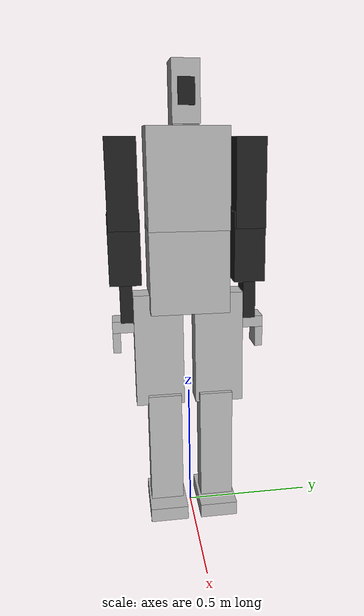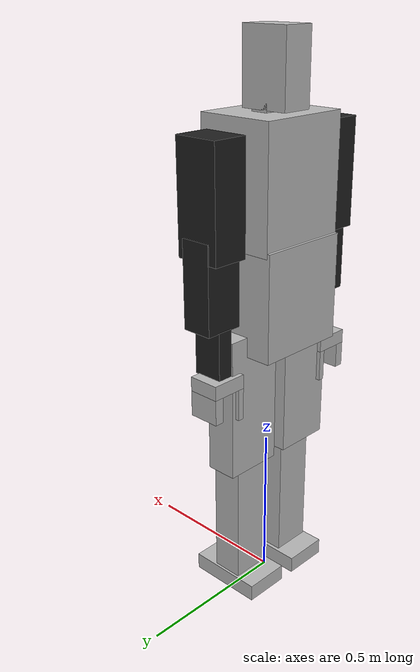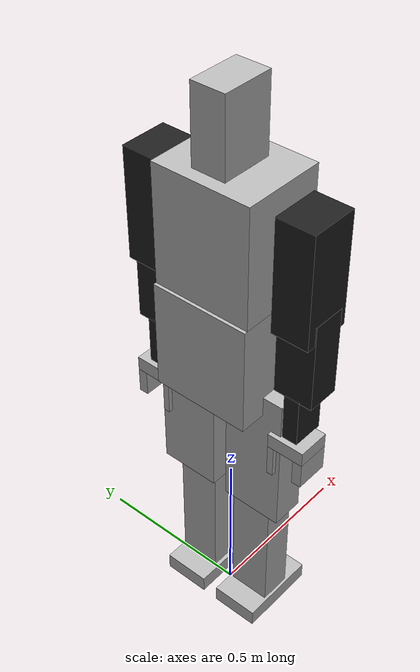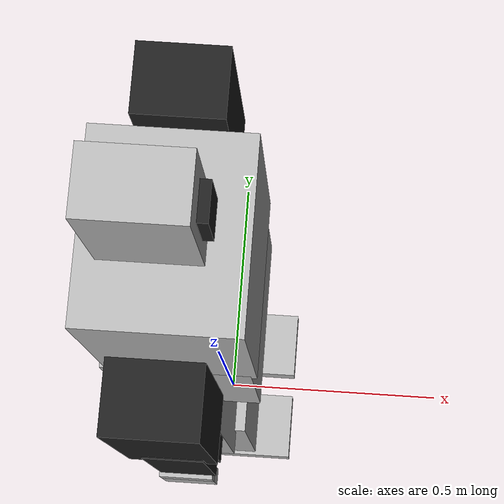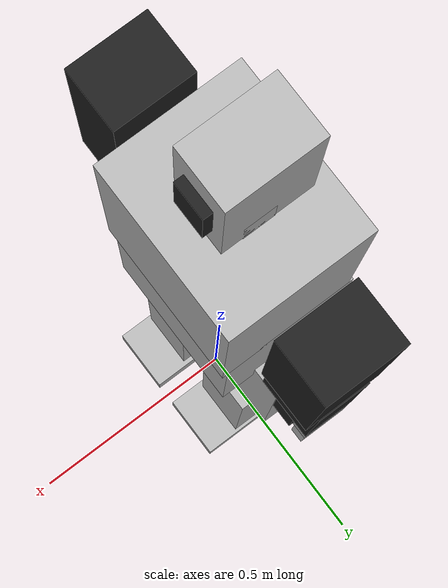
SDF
<?xml version="1.0" ?>
<sdf version="1.4">
<model name="thor">
  <static>false</static>

  <link name="torso">
    <pose>-0.0085 0 1.0180015 0 0 0</pose>
    <collision name="torso_collision">
      <geometry>
        <box>
          <size>0.25 0.3 0.3299971</size>
        </box>
      </geometry>
    </collision>
    <visual name="torso_visual">
      <pose>0 0 0 0 0 0</pose>
      <geometry>
        <box>
					<size>0.25 0.3 0.3299971</size>
				</box>
      </geometry>
    </visual>
    <inertial>
      <pose>-0.02034476 -0.000339931 0.014065804 0 0 0</pose>
      <mass>12.227102888619</mass>
      <inertia>
        <ixx>0.168786051</ixx>
        <iyy>0.151804339</iyy>
        <izz>0.183945912</izz>
        <iyz>0.000299081</iyz>
        <ixz>0.000191055</ixz>
        <ixy>0.000230307</ixy>
      </inertia>
    </inertial>
    <sensor name="imu_sensor" type="imu">
      <pose>0 0 0 0 0 1.5707963</pose>
      <always_on>1</always_on>
      <visualize>1</visualize>
      <topic>imu_sensor</topic>
    </sensor>
  </link>

  <link name="l_thigh">
    <pose>-0.002281 0.117675 0.6903315 0 0 0</pose>
    <collision name="l_thigh_collision">
      <geometry>
        <box>
          <size>0.1 0.18965 0.4496629</size>
        </box>
      </geometry>
    </collision>
    <visual name="l_thigh_visual">
      <pose>0 0 0 0 0 0</pose>
      <geometry>
        <box>
					<size>0.1 0.18965 0.4496629</size>
				</box>
      </geometry>
    </visual>
    <inertial>
      <pose>-0.01776384 0.009771943 -0.017537909 0 0 0</pose>
      <mass>5.13807864986</mass>
      <inertia>
        <ixx>0.050251535</ixx>
        <iyy>0.04823009</iyy>
        <izz>0.01825638</izz>
        <iyz>0.000428731</iyz>
        <ixz>-0.00485734</ixz>
        <ixy>-0.000369726</ixy>
      </inertia>
    </inertial>
  </link>

  <link name="r_thigh">
    <pose>-0.002281 -0.117675 0.6903315 0 0 0</pose>
    <collision name="r_thigh_collision">
      <geometry>
        <box>
          <size>0.1 0.18965 0.4496629</size>
        </box>
      </geometry>
    </collision>
    <visual name="r_thigh_visual">
      <pose>0 0 0 0 0 0</pose>
      <geometry>
        <box>
					<size>0.1 0.18965 0.4496629</size>
				</box>
      </geometry>
    </visual>
    <inertial>
      <pose>-0.017750387 -0.009800579 -0.017576732 0 0 0</pose>
      <mass>5.1402729320628</mass>
      <inertia>
        <ixx>0.050266937</ixx>
        <iyy>0.048269843</iyy>
        <izz>0.018232029</izz>
        <iyz>-0.000479151</iyz>
        <ixz>-0.004868597</ixz>
        <ixy>0.000400241</ixy>
      </inertia>
    </inertial>
  </link>

  <link name="l_shin">
    <pose>0.0190724 0.1021182 0.2811108 0 0 0</pose>
    <collision name="l_shin_collision">
      <geometry>
        <box>
          <size>0.1 0.13 0.4512008</size>
        </box>
      </geometry>
    </collision>
    <visual name="l_shin_visual">
      <pose>0 0 0 0 0 0</pose>
      <geometry>
        <box>
					<size>0.1 0.13 0.4512008</size>
				</box>
      </geometry>
    </visual>
    <inertial>
      <pose>0.016452175 -0.001617389 0.041544431 0 0 0</pose>
      <mass>4.2301928995278</mass>
      <inertia>
        <ixx>0.042672286</ixx>
        <iyy>0.043770804</iyy>
        <izz>0.012910027</izz>
        <iyz>-0.000372327</iyz>
        <ixz>0.005863435</ixz>
        <ixy>-4.6942e-05</ixy>
      </inertia>
    </inertial>
  </link>

  <link name="r_shin">
    <pose>0.0190724 -0.1021182 0.2811108 0 0 0</pose>
    <collision name="r_shin_collision">
      <geometry>
        <box>
          <size>0.1 0.13 0.4512008</size>
        </box>
      </geometry>
    </collision>
    <visual name="r_shin_visual">
      <pose>0 0 0 0 0 0</pose>
      <geometry>
        <box>
					<size>0.1 0.13 0.4512008</size>
				</box>
      </geometry>
    </visual>
    <inertial>
      <pose>0.016452169 0.001835239 0.041544431 0 0 0</pose>
      <mass>4.2301928995278</mass>
      <inertia>
        <ixx>0.042672987</ixx>
        <iyy>0.043770806</iyy>
        <izz>0.012910729</izz>
        <iyz>0.000406027</iyz>
        <ixz>0.005863442</ixz>
        <ixy>6.7751e-05</ixy>
      </inertia>
    </inertial>
  </link>

  <link name="l_foot">
    <pose>0.025 0.1 0.0266724 0 0 0</pose>
    <collision name="l_foot_collision">
      <geometry>
        <box>
          <size>0.25 0.1485 0.05493235</size>
        </box>
      </geometry>
      <!-- From atlas model -->
      <surface>
        <friction>
          <ode>
            <mu>0.9</mu>
            <mu2>0.9</mu2>
            <fdir1>1 0 0</fdir1>
          </ode>
        </friction>
        <contact>
          <ode>
            <max_vel>1.0</max_vel>
            <min_depth>0.003</min_depth>
          </ode>
        </contact>
      </surface>
    </collision>
    <visual name="l_foot_visual">
      <pose>0 0 0 0 0 0</pose>
      <geometry>
        <box>
					<size>0.25 0.1485 0.05493235</size>
				</box>
      </geometry>
    </visual>
    <inertial>
      <pose>-0.028042516 0.00096434599999999 0.005344341 0 0 0</pose>
      <mass>1.7169625926048</mass>
      <inertia>
        <ixx>0.00336244</ixx>
        <iyy>0.006955959</iyy>
        <izz>0.007417438</izz>
        <iyz>3.0838e-05</iyz>
        <ixz>-0.001236319</ixz>
        <ixy>5.764e-06</ixy>
      </inertia>
    </inertial>
    <sensor name="l_foot_contact_sensor" type="contact">
      <always_on>1</always_on>
      <contact>
        <collision>l_foot_collision</collision>
      </contact>
    </sensor>
  </link>

  <link name="r_foot">
    <pose>0.025 -0.10075 0.0266724 0 0 0</pose>
    <collision name="r_foot_collision">
      <geometry>
        <box>
          <size>0.25 0.1485 0.05493235</size>
        </box>
      </geometry>
      <!-- From atlas model -->
      <surface>
        <friction>
          <ode>
            <mu>0.9</mu>
            <mu2>0.9</mu2>
            <fdir1>1 0 0</fdir1>
          </ode>
        </friction>
        <contact>
          <ode>
            <max_vel>1.0</max_vel>
            <min_depth>0.003</min_depth>
          </ode>
        </contact>
      </surface>
    </collision>
    <visual name="r_foot_visual">
      <pose>0 0 0 0 0 0</pose>
      <geometry>
        <box>
					<size>0.25 0.1485 0.05493235</size>
				</box>
      </geometry>
    </visual>
    <inertial>
      <pose>-0.027942557 -0.00019983899999999 0.005337142 0 0 0</pose>
      <mass>1.7201733736363</mass>
      <inertia>
        <ixx>0.003363358</ixx>
        <iyy>0.006961913</iyy>
        <izz>0.007424205</izz>
        <iyz>-3.0884e-05</iyz>
        <ixz>-0.001236643</ixz>
        <ixy>-3.631e-06</ixy>
      </inertia>
    </inertial>
    <sensor name="r_foot_contact_sensor" type="contact">
      <always_on>1</always_on>
      <contact>
        <collision>r_foot_collision</collision>
      </contact>
    </sensor>
  </link>

  <link name="l_hip_yaw_trunnion">
    <pose>0 0.1 0.8925 0 0 0</pose>
    <!-- Axis = "z", -->
    <inertial>
      <mass>0.051573426573425</mass>
      <inertia>
        <ixx>0.0085833333333333</ixx>
        <iyy>0.0085833333333333</iyy>
        <izz>0.00075</izz>
        <ixy>0</ixy>
        <ixz>0</ixz>
        <iyz>0</iyz>
      </inertia>
    </inertial>
  </link>

  <link name="r_hip_yaw_trunnion">
    <pose>0 -0.1 0.8925 0 0 0</pose>
    <!-- Axis = "z", -->
    <inertial>
      <mass>0.051573426573425</mass>
      <inertia>
        <ixx>0.0085833333333333</ixx>
        <iyy>0.0085833333333333</iyy>
        <izz>0.00075</izz>
        <ixy>0</ixy>
        <ixz>0</ixz>
        <iyz>0</iyz>
      </inertia>
    </inertial>
  </link>

  <link name="l_hip_pitch_trunnion">
    <pose>0 0.1 0.8925 0 0 0</pose>
    <!-- Axis = "y", -->
    <inertial>
      <pose>0 0 0 1.5707963267949 0 0</pose>
      <mass>0.051573426573425</mass>
      <inertia>
        <ixx>0.0085833333333333</ixx>
        <iyy>0.0085833333333333</iyy>
        <izz>0.00075</izz>
        <ixy>0</ixy>
        <ixz>0</ixz>
        <iyz>0</iyz>
      </inertia>
    </inertial>
  </link>

  <link name="r_hip_pitch_trunnion">
    <pose>0 -0.1 0.8925 0 0 0</pose>
    <!-- Axis = "y", -->
    <inertial>
      <pose>0 0 0 1.5707963267949 0 0</pose>
      <mass>0.051573426573425</mass>
      <inertia>
        <ixx>0.0085833333333333</ixx>
        <iyy>0.0085833333333333</iyy>
        <izz>0.00075</izz>
        <ixy>0</ixy>
        <ixz>0</ixz>
        <iyz>0</iyz>
      </inertia>
    </inertial>
  </link>

  <link name="l_ankle_pitch_trunnion">
    <pose>0 0.1 0.0725 0 0 0</pose>
    <!-- Axis = "y", -->
    <inertial>
      <pose>0 0 0 1.5707963267949 0 0</pose>
      <mass>0.051573426573425</mass>
      <inertia>
        <ixx>0.0085833333333333</ixx>
        <iyy>0.0085833333333333</iyy>
        <izz>0.00075</izz>
        <ixy>0</ixy>
        <ixz>0</ixz>
        <iyz>0</iyz>
      </inertia>
    </inertial>
  </link>

  <link name="r_ankle_pitch_trunnion">
    <pose>0 -0.1 0.0725 0 0 0</pose>
    <!-- Axis = "y", -->
    <inertial>
      <pose>0 0 0 1.5707963267949 0 0</pose>
      <mass>0.051573426573425</mass>
      <inertia>
        <ixx>0.0085833333333333</ixx>
        <iyy>0.0085833333333333</iyy>
        <izz>0.00075</izz>
        <ixy>0</ixy>
        <ixz>0</ixz>
        <iyz>0</iyz>
      </inertia>
    </inertial>
  </link>

  <joint name="l_hip_yaw" type="revolute">
    <parent>
      torso
    </parent>
    <child>
      l_hip_yaw_trunnion
    </child>
    <axis>
      <xyz>0 0 1</xyz>
      <limit>
        <lower>-0.34906585039887</lower>
        <upper>0.78539816339745</upper>
        <effort>150</effort>
        <velocity>12</velocity>
      </limit>
      <dynamics>
        <damping>1.0</damping>
        <friction>0</friction>
      </dynamics>
    </axis>
    <physics>
      <ode>
        <cfm_damping>1</cfm_damping>
      </ode>
    </physics>
  </joint>

  <joint name="r_hip_yaw" type="revolute">
    <parent>
      torso
    </parent>
    <child>
      r_hip_yaw_trunnion
    </child>
    <axis>
      <xyz>0 0 1</xyz>
      <limit>
        <lower>-0.78539816339745</lower>
        <upper>0.34906585039887</upper>
        <effort>150</effort>
        <velocity>12</velocity>
      </limit>
      <dynamics>
        <damping>1.0</damping>
        <friction>0</friction>
      </dynamics>
    </axis>
    <physics>
      <ode>
        <cfm_damping>1</cfm_damping>
      </ode>
    </physics>
  </joint>

  <joint name="l_hip_roll" type="revolute">
    <parent>
      l_hip_yaw_trunnion
    </parent>
    <child>
      l_hip_pitch_trunnion
    </child>
    <axis>
      <xyz>1 0 0</xyz>
      <limit>
        <lower>-0.5235987755983</lower>
        <upper>0.78539816339745</upper>
        <effort>150</effort>
        <velocity>12</velocity>
      </limit>
      <dynamics>
        <damping>1.0</damping>
        <friction>0</friction>
      </dynamics>
    </axis>
    <physics>
      <ode>
        <cfm_damping>1</cfm_damping>
      </ode>
    </physics>
  </joint>

  <joint name="r_hip_roll" type="revolute">
    <parent>
      r_hip_yaw_trunnion
    </parent>
    <child>
      r_hip_pitch_trunnion
    </child>
    <axis>
      <xyz>1 0 0</xyz>
      <limit>
        <lower>-0.78539816339745</lower>
        <upper>0.5235987755983</upper>
        <effort>150</effort>
        <velocity>12</velocity>
      </limit>
      <dynamics>
        <damping>1.0</damping>
        <friction>0</friction>
      </dynamics>
    </axis>
    <physics>
      <ode>
        <cfm_damping>1</cfm_damping>
      </ode>
    </physics>
  </joint>

  <joint name="l_hip_pitch" type="revolute">
    <pose>0.002281 -0.017675 0.2021685 0 0 0</pose>
    <parent>
      l_hip_pitch_trunnion
    </parent>
    <child>
      l_thigh
    </child>
    <axis>
      <xyz>0 1 0</xyz>
      <limit>
        <lower>-2.0943951023932</lower>
        <upper>0.5235987755983</upper>
        <effort>150</effort>
        <velocity>12</velocity>
      </limit>
      <dynamics>
        <damping>1.0</damping>
        <friction>0</friction>
      </dynamics>
    </axis>
    <physics>
      <ode>
        <cfm_damping>1</cfm_damping>
      </ode>
    </physics>
  </joint>

  <joint name="r_hip_pitch" type="revolute">
    <pose>0.002281 0.017675 0.2021685 0 0 0</pose>
    <parent>
      r_hip_pitch_trunnion
    </parent>
    <child>
      r_thigh
    </child>
    <axis>
      <xyz>0 1 0</xyz>
      <limit>
        <lower>-2.0943951023932</lower>
        <upper>0.5235987755983</upper>
        <effort>150</effort>
        <velocity>12</velocity>
      </limit>
      <dynamics>
        <damping>1.0</damping>
        <friction>0</friction>
      </dynamics>
    </axis>
    <physics>
      <ode>
        <cfm_damping>1</cfm_damping>
      </ode>
    </physics>
  </joint>

  <joint name="l_knee_pitch" type="revolute">
    <pose>-0.0190724 -0.0021182 0.2013892 0 0 0</pose>
    <parent>
      l_thigh
    </parent>
    <child>
      l_shin
    </child>
    <axis>
      <xyz>0 1 0</xyz>
      <limit>
        <lower>0</lower>
        <upper>2.3561944901923</upper>
        <effort>150</effort>
        <velocity>12</velocity>
      </limit>
      <dynamics>
        <damping>1.0</damping>
        <friction>0</friction>
      </dynamics>
    </axis>
    <physics>
      <ode>
        <cfm_damping>1</cfm_damping>
      </ode>
    </physics>
  </joint>

  <joint name="r_knee_pitch" type="revolute">
    <pose>-0.0190724 0.0021182 0.2013892 0 0 0</pose>
    <parent>
      r_thigh
    </parent>
    <child>
      r_shin
    </child>
    <axis>
      <xyz>0 1 0</xyz>
      <limit>
        <lower>0</lower>
        <upper>2.3561944901923</upper>
        <effort>150</effort>
        <velocity>12</velocity>
      </limit>
      <dynamics>
        <damping>1.0</damping>
        <friction>0</friction>
      </dynamics>
    </axis>
    <physics>
      <ode>
        <cfm_damping>1</cfm_damping>
      </ode>
    </physics>
  </joint>

  <joint name="l_ankle_pitch" type="revolute">
    <parent>
      l_shin
    </parent>
    <child>
      l_ankle_pitch_trunnion
    </child>
    <axis>
      <xyz>0 1 0</xyz>
      <limit>
        <lower>-0.95993108859688</lower>
        <upper>0.61086523819802</upper>
        <effort>150</effort>
        <velocity>12</velocity>
      </limit>
      <dynamics>
        <damping>1.0</damping>
        <friction>0</friction>
      </dynamics>
    </axis>
    <physics>
      <ode>
        <cfm_damping>1</cfm_damping>
      </ode>
    </physics>
  </joint>

  <joint name="r_ankle_pitch" type="revolute">
    <parent>
      r_shin
    </parent>
    <child>
      r_ankle_pitch_trunnion
    </child>
    <axis>
      <xyz>0 1 0</xyz>
      <limit>
        <lower>-0.95993108859688</lower>
        <upper>0.61086523819802</upper>
        <effort>150</effort>
        <velocity>12</velocity>
      </limit>
      <dynamics>
        <damping>1.0</damping>
        <friction>0</friction>
      </dynamics>
    </axis>
    <physics>
      <ode>
        <cfm_damping>1</cfm_damping>
      </ode>
    </physics>
  </joint>

  <joint name="l_ankle_roll" type="revolute">
    <pose>-0.025 0 0.0458276 0 0 0</pose>
    <parent>
      l_ankle_pitch_trunnion
    </parent>
    <child>
      l_foot
    </child>
    <axis>
      <xyz>1 0 0</xyz>
      <limit>
        <lower>-0.5235987755983</lower>
        <upper>0.5235987755983</upper>
        <effort>150</effort>
        <velocity>12</velocity>
      </limit>
      <dynamics>
        <damping>1.0</damping>
        <friction>0</friction>
      </dynamics>
    </axis>
    <physics>
      <provide_feedback>1</provide_feedback>
      <ode>
        <cfm_damping>1</cfm_damping>
      </ode>
    </physics>
  </joint>

  <joint name="r_ankle_roll" type="revolute">
    <pose>-0.025 0.00075 0.0458276 0 0 0</pose>
    <parent>
      r_ankle_pitch_trunnion
    </parent>
    <child>
      r_foot
    </child>
    <axis>
      <xyz>1 0 0</xyz>
      <limit>
        <lower>-0.5235987755983</lower>
        <upper>0.5235987755983</upper>
        <effort>150</effort>
        <velocity>12</velocity>
      </limit>
      <dynamics>
        <damping>1.0</damping>
        <friction>0</friction>
      </dynamics>
    </axis>
    <physics>
      <provide_feedback>1</provide_feedback>
      <ode>
        <cfm_damping>1</cfm_damping>
      </ode>
    </physics>
  </joint>

  <joint name="waist_yaw" type="revolute">
    <parent>
      torso
    </parent>
    <child>
      waist_pitch_trunnion
    </child>
    <axis>
      <xyz>0 0 1</xyz>
      <limit>
        <lower>-0.78539816339745</lower>
        <upper>0.78539816339745</upper>
        <effort>150</effort>
        <velocity>12</velocity>
      </limit>
      <dynamics>
        <damping>1.0</damping>
        <friction>0</friction>
      </dynamics>
    </axis>
    <physics>
      <ode>
        <cfm_damping>1</cfm_damping>
      </ode>
    </physics>
  </joint>

  <link name="waist_pitch_trunnion">
    <pose>0 0 1.2575 0 0 0</pose>
    <!-- Axis = "y", -->
    <inertial>
      <pose>0 0 0 1.5707963267949 0 0</pose>
      <mass>0.051573426573425</mass>
      <inertia>
        <ixx>0.0085833333333333</ixx>
        <iyy>0.0085833333333333</iyy>
        <izz>0.00075</izz>
        <ixy>0</ixy>
        <ixz>0</ixz>
        <iyz>0</iyz>
      </inertia>
    </inertial>
  </link>

  <joint name="waist_pitch" type="revolute">
    <pose>-0.001 0 -0.09375 0 0 0</pose>
    <parent>
      waist_pitch_trunnion
    </parent>
    <child>
      chest
    </child>
    <axis>
      <xyz>0 1 0</xyz>
      <limit>
        <lower>-0.34906585039887</lower>
        <upper>0.34906585039887</upper>
        <effort>150</effort>
        <velocity>12</velocity>
      </limit>
      <dynamics>
        <damping>1.0</damping>
        <friction>0</friction>
      </dynamics>
    </axis>
    <physics>
      <ode>
        <cfm_damping>1</cfm_damping>
      </ode>
    </physics>
  </joint>

  <link name="chest">
    <pose>0.001 0 1.35125 0 0 0</pose>
    <collision name="chest_collision">
      <geometry>
        <box>
          <size>0.25 0.3 0.3685</size>
        </box>
      </geometry>
    </collision>
    <visual name="chest_visual">
      <pose>0 0 0 0 0 0</pose>
      <geometry>
        <box>
					<size>0.25 0.3 0.3685</size>
				</box>
      </geometry>
    </visual>
    <inertial>
      <pose>-0.010475235 0.003477582 0.016042633 0 0 0</pose>
      <mass>8.9112224908039</mass>
      <inertia>
        <ixx>0.212139518</ixx>
        <iyy>0.177608078</iyy>
        <izz>0.082558505</izz>
        <iyz>0.000482353</iyz>
        <ixz>-0.001780773</ixz>
        <ixy>0.000361146</ixy>
      </inertia>
    </inertial>
  </link>

  <joint name="head_yaw" type="revolute">
    <pose>0 -0.003 -0.024025 0 0 0</pose>
    <parent>
      chest
    </parent>
    <child>
      neck
    </child>
    <axis>
      <xyz>0 0 1</xyz>
      <limit>
        <lower>-1.5707963267949</lower>
        <upper>1.5707963267949</upper>
        <effort>150</effort>
        <velocity>12</velocity>
      </limit>
      <dynamics>
        <damping>1.0</damping>
        <friction>0</friction>
      </dynamics>
    </axis>
    <physics>
      <ode>
        <cfm_damping>1</cfm_damping>
      </ode>
    </physics>
  </joint>

  <link name="neck">
    <pose>0 0.003 1.559525 0 0 0</pose>
    <collision name="neck_collision">
      <geometry>
        <box>
          <size>0.0541 0.096 0.05405</size>
        </box>
      </geometry>
    </collision>
    <visual name="neck_visual">
      <pose>0 0 0 0 0 0</pose>
      <geometry>
        <box>
					<size>0.0541 0.096 0.05405</size>
				</box>
      </geometry>
    </visual>
    <inertial>
      <pose>1.2e-08 -0.002875317 0.00050305599999989 0 0 0</pose>
      <mass>0.42837005699299</mass>
      <inertia>
        <ixx>0.000336505</ixx>
        <iyy>0.000143407</iyy>
        <izz>0.000323735</izz>
        <iyz>-8.463e-06</iyz>
        <ixz>0</ixz>
        <ixy>-0</ixy>
      </inertia>
    </inertial>
  </link>

  <joint name="head_pitch" type="revolute">
    <pose>0.0142568 0 -0.08855 0 0 0</pose>
    <parent>
      neck
    </parent>
    <child>
      head
    </child>
    <axis>
      <xyz>0 1 0</xyz>
      <limit>
        <lower>-0.5235987755983</lower>
        <upper>1.0471975511966</upper>
        <effort>150</effort>
        <velocity>12</velocity>
      </limit>
      <dynamics>
        <damping>1.0</damping>
        <friction>0</friction>
      </dynamics>
    </axis>
    <physics>
      <ode>
        <cfm_damping>1</cfm_damping>
      </ode>
    </physics>
  </joint>

  <link name="head">
    <pose>-0.0142568 0 1.65105 0 0 0</pose>
    <collision name="head_collision">
      <geometry>
        <box>
          <size>0.155386 0.102 0.2191</size>
        </box>
      </geometry>
    </collision>
    <visual name="head_visual">
      <pose>0 0 0 0 0 0</pose>
      <geometry>
        <box>
					<size>0.155386 0.102 0.2191</size>
				</box>
      </geometry>
    </visual>
    <inertial>
      <pose>-0.004959974 4.1336e-05 0.056361706 0 0 0</pose>
      <mass>2.2650798087587</mass>
      <inertia>
        <ixx>0.013808097</ixx>
        <iyy>0.011370053</iyy>
        <izz>0.007199137</izz>
        <iyz>-9.74e-06</iyz>
        <ixz>0.002271466</ixz>
        <ixy>1.389e-06</ixy>
      </inertia>
    </inertial>
</link>

  <!-- MultiSense S7 -->
  <joint name="left_camera_frame_joint" type="revolute">
    <pose>0.0142568 0 -0.08855 0 0 0</pose>
    <parent>neck</parent>
    <child>left_camera_frame</child>
    <axis>
      <xyz>0 1 0</xyz>
      <limit>
  <lower>0.0</lower>
  <upper>0.0</upper>
      </limit>
    </axis>
  </joint>

  <!-- link for left frame -->
  <link name="left_camera_frame">
  <!-- Fix left frame pose-->
    <pose>0.045 0.035 1.74875 0 0 0</pose>
    <sensor type="multicamera" name="camera_multisense">
      <update_rate>30.0</update_rate>
      <camera name="left">
        <pose>0 0 0 0 0 0</pose>
        <horizontal_fov>1.3962634</horizontal_fov>
        <image>
          <width>800</width>
          <height>800</height>
          <format>R8G8B8</format>
        </image>
        <clip>
          <near>0.02</near>
          <far>300</far>
        </clip>
        <noise>
          <type>gaussian</type>
          <mean>0.0</mean>
          <stddev>0.007</stddev>
        </noise>
      </camera>
      <camera name="right">
        <pose>0 -0.07 0 0 0 0</pose>
        <horizontal_fov>1.3962634</horizontal_fov>
        <image>
          <width>800</width>
          <height>800</height>
          <format>R8G8B8</format>
        </image>
        <clip>
          <near>0.02</near>
          <far>300</far>
        </clip>
        <noise>
          <type>gaussian</type>
          <mean>0.0</mean>
          <stddev>0.007</stddev>
        </noise>
      </camera>
      <plugin name="stereo_camera_controller" filename="libgazebo_ros_multicamera.so">
        <alwaysOn>true</alwaysOn>
        <updateRate>0.0</updateRate>
        <cameraName>multisense</cameraName>
        <imageTopicName>image_color</imageTopicName>
        <cameraInfoTopicName>camera_info</cameraInfoTopicName>
        <frameName>/multisense/left_camera_optical_frame</frameName>
        <hackBaseline>0.07</hackBaseline>
        <distortionK1>0.0</distortionK1>
        <distortionK2>0.0</distortionK2>
        <distortionK3>0.0</distortionK3>
        <distortionT1>0.0</distortionT1>
        <distortionT2>0.0</distortionT2>
      </plugin>
    </sensor>
  </link>

  <joint name="head_lidar_roll" type="revolute">
    <pose>-0.0098 0 0 0 0 0</pose>
    <parent>
      head
    </parent>
    <child>
      head_lidar
    </child>
    <axis>
      <xyz>1 0 0</xyz>
      <limit>
        <effort>150</effort>
        <velocity>12</velocity>
      </limit>
      <dynamics>
        <damping>1.0</damping>
        <friction>0</friction>
      </dynamics>
    </axis>
    <physics>
      <ode>
        <cfm_damping>1</cfm_damping>
      </ode>
    </physics>
  </joint>

  <link name="head_lidar">
    <pose>0.0098 0 1.6515 0 0 0</pose>
    <collision name="head_lidar_collision">
      <geometry>
        <box>
          <size>0.1395 0.06 0.093</size>
        </box>
      </geometry>
    </collision>
    <visual name="head_lidar_visual">
      <pose>0 0 0 0 0 0</pose>
      <geometry>
        <box>
					<size>0.1395 0.06 0.093</size>
				</box>
      </geometry>
      <material>
        <script>
          <uri>file://media/materials/scripts/gazebo.material</uri>
          <name>Gazebo/FlatBlack</name>
        </script>
      </material>
    </visual>
    <inertial>
      <pose>0.015857021 -2.21e-06 -0.0076187240000001 0 0 0</pose>
      <mass>0.44774993965034</mass>
      <inertia>
        <ixx>0.000368817</ixx>
        <iyy>0.00087532</iyy>
        <izz>0.000707833</izz>
        <iyz>-2.1e-08</iyz>
        <ixz>-7.653e-06</ixz>
        <ixy>5.5e-08</ixy>
      </inertia>
    </inertial>
    <sensor name="lidar.head_hokuyo" type="ray">
      <!-- Hokuyo UTM-30LX-EW -->
      <always_on>1</always_on>
      <update_rate>40</update_rate>
      <pose>0.0397 0 0.02 0 0 0</pose>
      <ray>
        <scan>
          <horizontal>
            <samples>1081</samples>
            <resolution>1</resolution>
            <min_angle>-2.35619449</min_angle>
            <max_angle>2.35619449</max_angle>
          </horizontal>
        </scan>
        <range>
          <min>.1</min>
          <max>70</max>
          <resolution>.05</resolution>
        </range>
        <noise>
          <type>gaussian</type>
          <mean>0.0</mean>
          <stddev>0.01</stddev>
        </noise>
      </ray>
      <plugin name="gazebo_ros_head_hokuyo" filename="libgazebo_ros_laser.so">
        <topicName>/laser/scan/</topicName>
        <frameName>head_lidar_emitter</frameName>
      </plugin>
    </sensor>
  </link>

  <joint name="l_shoulder_pitch" type="revolute">
    <parent>
      chest
    </parent>
    <child>
      l_shoulder_pitch_trunnion
    </child>
    <axis>
      <xyz>0 1 0</xyz>
      <limit>
        <lower>-0.7418</lower>
        <upper>1.5707963267949</upper>
        <effort>150</effort>
        <velocity>12</velocity>
      </limit>
      <dynamics>
        <damping>1.0</damping>
        <friction>0</friction>
      </dynamics>
    </axis>
    <physics>
      <ode>
        <cfm_damping>1</cfm_damping>
      </ode>
    </physics>
  </joint>

  <joint name="r_shoulder_pitch" type="revolute">
    <parent>
      chest
    </parent>
    <child>
      r_shoulder_pitch_trunnion
    </child>
    <axis>
      <xyz>0 1 0</xyz>
      <limit>
        <lower>-0.7418</lower>
        <upper>1.5707963267949</upper>
        <effort>150</effort>
        <velocity>12</velocity>
      </limit>
      <dynamics>
        <damping>1.0</damping>
        <friction>0</friction>
      </dynamics>
    </axis>
    <physics>
      <ode>
        <cfm_damping>1</cfm_damping>
      </ode>
    </physics>
  </joint>

  <link name="l_shoulder_pitch_trunnion">
    <pose>0 0.2375 1.4715 0 0 0</pose>
    <!-- Axis = "y", -->
    <inertial>
      <pose>0 0 0 1.5707963267949 0 0</pose>
      <mass>0.051573426573425</mass>
      <inertia>
        <ixx>0.0085833333333333</ixx>
        <iyy>0.0085833333333333</iyy>
        <izz>0.00075</izz>
        <ixy>0</ixy>
        <ixz>0</ixz>
        <iyz>0</iyz>
      </inertia>
    </inertial>
  </link>

  <link name="r_shoulder_pitch_trunnion">
    <pose>0 -0.2375 1.4715 0 0 0</pose>
    <!-- Axis = "y", -->
    <collision name="r_shoulder_pitch_trunnion_collision">
      <pose>0 0 0 1.5707963267949 0 0</pose>
      <geometry>
        <cylinder>
          <radius>0.01</radius>
          <length>0.1</length>
        </cylinder>
      </geometry>
    </collision>
    <inertial>
      <pose>0 0 0 1.5707963267949 0 0</pose>
      <mass>0.051573426573425</mass>
      <inertia>
        <ixx>0.0085833333333333</ixx>
        <iyy>0.0085833333333333</iyy>
        <izz>0.00075</izz>
        <ixy>0</ixy>
        <ixz>0</ixz>
        <iyz>0</iyz>
      </inertia>
    </inertial>
  </link>

  <joint name="l_shoulder_roll" type="revolute">
    <parent>
      l_shoulder_pitch_trunnion
    </parent>
    <child>
      l_shoulder_yaw_trunnion
    </child>
    <axis>
      <xyz>1 0 0</xyz>
      <limit>
        <lower>0</lower>
        <upper>3.1415926535898</upper>
        <effort>150</effort>
        <velocity>12</velocity>
      </limit>
      <dynamics>
        <damping>1.0</damping>
        <friction>0</friction>
      </dynamics>
    </axis>
    <physics>
      <ode>
        <cfm_damping>1</cfm_damping>
      </ode>
    </physics>
  </joint>

  <joint name="r_shoulder_roll" type="revolute">
    <parent>
      r_shoulder_pitch_trunnion
    </parent>
    <child>
      r_shoulder_yaw_trunnion
    </child>
    <axis>
      <xyz>1 0 0</xyz>
      <limit>
        <lower>-3.1415926535898</lower>
        <upper>0</upper>
        <effort>150</effort>
        <velocity>12</velocity>
      </limit>
      <dynamics>
        <damping>1.0</damping>
        <friction>0</friction>
      </dynamics>
    </axis>
    <physics>
      <ode>
        <cfm_damping>1</cfm_damping>
      </ode>
    </physics>
  </joint>

  <link name="l_shoulder_yaw_trunnion">
    <pose>0 0.2375 1.4715 0 0 0</pose>
    <!-- Axis = "z", -->
    <inertial>
      <mass>0.051573426573425</mass>
      <inertia>
        <ixx>0.0085833333333333</ixx>
        <iyy>0.0085833333333333</iyy>
        <izz>0.00075</izz>
        <ixy>0</ixy>
        <ixz>0</ixz>
        <iyz>0</iyz>
      </inertia>
    </inertial>
  </link>

  <link name="r_shoulder_yaw_trunnion">
    <pose>0 -0.2375 1.4715 0 0 0</pose>
    <!-- Axis = "z", -->
    <collision name="r_shoulder_yaw_trunnion_collision">
      <geometry>
        <cylinder>
          <radius>0.01</radius>
          <length>0.1</length>
        </cylinder>
      </geometry>
    </collision>
    <inertial>
      <mass>0.051573426573425</mass>
      <inertia>
        <ixx>0.0085833333333333</ixx>
        <iyy>0.0085833333333333</iyy>
        <izz>0.00075</izz>
        <ixy>0</ixy>
        <ixz>0</ixz>
        <iyz>0</iyz>
      </inertia>
    </inertial>
  </link>

  <joint name="l_shoulder_yaw" type="revolute">
    <pose>0 0 0.1398848 0 0 0</pose>
    <parent>
      l_shoulder_yaw_trunnion
    </parent>
    <child>
      l_arm
    </child>
    <axis>
      <xyz>0 0 1</xyz>
      <limit>
        <lower>-3.1415926535898</lower>
        <upper>3.1415926535898</upper>
        <effort>150</effort>
        <velocity>12</velocity>
      </limit>
      <dynamics>
        <damping>1.0</damping>
        <friction>0</friction>
      </dynamics>
    </axis>
    <physics>
      <ode>
        <cfm_damping>1</cfm_damping>
      </ode>
    </physics>
  </joint>

  <joint name="r_shoulder_yaw" type="revolute">
    <pose>0 0 0.1398848 0 0 0</pose>
    <parent>
      r_shoulder_yaw_trunnion
    </parent>
    <child>
      r_arm
    </child>
    <axis>
      <xyz>0 0 1</xyz>
      <limit>
        <lower>-3.1415926535898</lower>
        <upper>3.1415926535898</upper>
        <effort>150</effort>
        <velocity>12</velocity>
      </limit>
      <dynamics>
        <damping>1.0</damping>
        <friction>0</friction>
      </dynamics>
    </axis>
    <physics>
      <ode>
        <cfm_damping>1</cfm_damping>
      </ode>
    </physics>
  </joint>

  <link name="l_arm">
    <pose>0 0.2375 1.3316152 0 0 0</pose>
    <collision name="l_arm_collision">
      <geometry>
        <box>
          <size>0.144 0.114 0.3337695</size>
        </box>
      </geometry>
    </collision>
    <visual name="l_arm_visual">
      <pose>0 0 0 0 0 0</pose>
      <geometry>
        <box>
					<size>0.144 0.114 0.3337695</size>
				</box>
      </geometry>
      <material>
        <script>
          <uri>file://media/materials/scripts/gazebo.material</uri>
          <name>Gazebo/FlatBlack</name>
        </script>
      </material>
    </visual>
    <inertial>
      <pose>0.007214087 -0.001779321 0.027015869 0 0 0</pose>
      <mass>3.0258177870279</mass>
      <inertia>
        <ixx>0.038478468</ixx>
        <iyy>0.039609455</iyy>
        <izz>0.004412843</izz>
        <iyz>-0.000681544</iyz>
        <ixz>-0.003774572</ixz>
        <ixy>4.9829e-05</ixy>
      </inertia>
    </inertial>
  </link>

  <link name="r_arm">
    <pose>0 -0.2375 1.3316152 0 0 0</pose>
    <collision name="r_arm_collision">
      <geometry>
        <box>
          <size>0.144 0.114 0.3337695</size>
        </box>
      </geometry>
    </collision>
    <visual name="r_arm_visual">
      <pose>0 0 0 0 0 0</pose>
      <geometry>
        <box>
					<size>0.144 0.114 0.3337695</size>
				</box>
      </geometry>
      <material>
        <script>
          <uri>file://media/materials/scripts/gazebo.material</uri>
          <name>Gazebo/FlatBlack</name>
        </script>
      </material>
    </visual>
    <inertial>
      <pose>0.007213335 0.001779321 0.027015869 0 0 0</pose>
      <mass>3.0258177870279</mass>
      <inertia>
        <ixx>0.038478468</ixx>
        <iyy>0.039609764</iyy>
        <izz>0.004413151</izz>
        <iyz>0.000681544</iyz>
        <ixz>-0.003774703</ixz>
        <ixy>-4.9825e-05</ixy>
      </inertia>
    </inertial>
  </link>

  <joint name="l_elbow_pitch" type="revolute">
    <pose>0.0257566 0 0.1107567 0 0 0</pose>
    <parent>
      l_arm
    </parent>
    <child>
      l_forearm
    </child>
    <axis>
      <xyz>0 1 0</xyz>
      <limit>
        <lower>-2.763</lower>
        <upper>0</upper>
        <effort>150</effort>
        <velocity>12</velocity>
      </limit>
      <dynamics>
        <damping>1.0</damping>
        <friction>0</friction>
      </dynamics>
    </axis>
    <physics>
      <ode>
        <cfm_damping>1</cfm_damping>
      </ode>
    </physics>
  </joint>

  <joint name="r_elbow_pitch" type="revolute">
    <pose>0.0257566 0 0.1107567 0 0 0</pose>
    <parent>
      r_arm
    </parent>
    <child>
      r_forearm
    </child>
    <axis>
      <xyz>0 1 0</xyz>
      <limit>
        <lower>-2.763</lower>
        <upper>0</upper>
        <effort>150</effort>
        <velocity>12</velocity>
      </limit>
      <dynamics>
        <damping>1.0</damping>
        <friction>0</friction>
      </dynamics>
    </axis>
    <physics>
      <ode>
        <cfm_damping>1</cfm_damping>
      </ode>
    </physics>
  </joint>

  <link name="l_forearm">
    <pose>0.0042434 0.2375 1.0907433 0 0 0</pose>
    <collision name="l_forearm_collision">
      <geometry>
        <box>
          <size>0.0984867 0.12 0.2684867</size>
        </box>
      </geometry>
    </collision>
    <visual name="l_forearm_visual">
      <pose>0 0 0 0 0 0</pose>
      <geometry>
        <box>
					<size>0.0984867 0.12 0.2684867</size>
				</box>
      </geometry>
      <material>
        <script>
          <uri>file://media/materials/scripts/gazebo.material</uri>
          <name>Gazebo/FlatBlack</name>
        </script>
      </material>
    </visual>
    <inertial>
      <pose>-0.004787739 0.00037668700000001 -0.024396152 0 0 0</pose>
      <mass>1.5466488026748</mass>
      <inertia>
        <ixx>0.006819683</ixx>
        <iyy>0.006750973</iyy>
        <izz>0.001205454</izz>
        <iyz>4.3534e-05</iyz>
        <ixz>0.000101312</ixz>
        <ixy>5.676e-06</ixy>
      </inertia>
    </inertial>
  </link>

  <link name="r_forearm">
    <pose>0.0042434 -0.2375 1.0907433 0 0 0</pose>
    <collision name="r_forearm_collision">
      <geometry>
        <box>
          <size>0.0984867 0.12 0.2684867</size>
        </box>
      </geometry>
    </collision>
    <visual name="r_forearm_visual">
      <pose>0 0 0 0 0 0</pose>
      <geometry>
        <box>
					<size>0.0984867 0.12 0.2684867</size>
				</box>
      </geometry>
      <material>
        <script>
          <uri>file://media/materials/scripts/gazebo.material</uri>
          <name>Gazebo/FlatBlack</name>
        </script>
      </material>
    </visual>
    <inertial>
      <pose>-0.004787739 8.3232999999988e-05 -0.024396152 0 0 0</pose>
      <mass>1.5466488026748</mass>
      <inertia>
        <ixx>0.006819886</ixx>
        <iyy>0.006750973</iyy>
        <izz>0.001205657</izz>
        <iyz>3.9504e-05</iyz>
        <ixz>0.000101316</ixz>
        <ixy>4.675e-06</ixy>
      </inertia>
    </inertial>
  </link>

  <link name="l_foreforearm">
    <pose>0 0.2375 0.885 0 0 0</pose>
    <collision name="l_foreforearm_collision">
      <geometry>
        <box>
          <size>0.096 0.048 0.15</size>
        </box>
      </geometry>
    </collision>
    <visual name="l_foreforearm_visual">
      <pose>0 0 0 0 0 0</pose>
      <geometry>
        <box>
					<size>0.096 0.048 0.15</size>
				</box>
      </geometry>
      <material>
        <script>
          <uri>file://media/materials/scripts/gazebo.material</uri>
          <name>Gazebo/FlatBlack</name>
        </script>
      </material>
    </visual>
    <inertial>
      <pose>0.000452337 0 0.013026871 0 0 0</pose>
      <mass>0.4784829261888</mass>
      <inertia>
        <ixx>0.000584304</ixx>
        <iyy>0.000662668</iyy>
        <izz>0.000222334</izz>
        <iyz>-0</iyz>
        <ixz>1.3796e-05</ixz>
        <ixy>-0</ixy>
      </inertia>
    </inertial>
  </link>

  <link name="r_foreforearm">
    <pose>0 -0.2375 0.885 0 0 0</pose>
    <collision name="r_foreforearm_collision">
      <geometry>
        <box>
          <size>0.096 0.048 0.15</size>
        </box>
      </geometry>
    </collision>
    <visual name="r_foreforearm_visual">
      <pose>0 0 0 0 0 0</pose>
      <geometry>
        <box>
					<size>0.096 0.048 0.15</size>
				</box>
      </geometry>
      <material>
        <script>
          <uri>file://media/materials/scripts/gazebo.material</uri>
          <name>Gazebo/FlatBlack</name>
        </script>
      </material>
    </visual>
    <inertial>
      <pose>0.000452337 0 0.013026871 0 0 0</pose>
      <mass>0.4784829261888</mass>
      <inertia>
        <ixx>0.000584304</ixx>
        <iyy>0.000662668</iyy>
        <izz>0.000222334</izz>
        <iyz>-0</iyz>
        <ixz>1.3796e-05</ixz>
        <ixy>-0</ixy>
      </inertia>
    </inertial>
  </link>

  <joint name="l_wrist_yaw" type="revolute">
    <parent>
      l_forearm
    </parent>
    <child>
      l_wrist_yaw_trunnion
    </child>
    <axis>
      <xyz>0 0 1</xyz>
      <limit>
        <lower>-3.1415926535898</lower>
        <upper>2.2165</upper>
        <effort>150</effort>
        <velocity>12</velocity>
      </limit>
      <dynamics>
        <damping>1.0</damping>
        <friction>0</friction>
      </dynamics>
    </axis>
    <physics>
      <ode>
        <cfm_damping>1</cfm_damping>
      </ode>
    </physics>
  </joint>

  <joint name="r_wrist_yaw" type="revolute">
    <parent>
      r_forearm
    </parent>
    <child>
      r_wrist_yaw_trunnion
    </child>
    <axis>
      <xyz>0 0 1</xyz>
      <limit>
        <lower>-2.2165</lower>
        <upper>3.1415926535898</upper>
        <effort>150</effort>
        <velocity>12</velocity>
      </limit>
      <dynamics>
        <damping>1.0</damping>
        <friction>0</friction>
      </dynamics>
    </axis>
    <physics>
      <ode>
        <cfm_damping>1</cfm_damping>
      </ode>
    </physics>
  </joint>

  <link name="l_wrist_yaw_trunnion">
    <pose>0 0.2375 0.9775 0 0 0</pose>
    <!-- Axis = "z", -->
    <inertial>
      <mass>0.051573426573425</mass>
      <inertia>
        <ixx>0.0085833333333333</ixx>
        <iyy>0.0085833333333333</iyy>
        <izz>0.00075</izz>
        <ixy>0</ixy>
        <ixz>0</ixz>
        <iyz>0</iyz>
      </inertia>
    </inertial>
  </link>

  <link name="r_wrist_yaw_trunnion">
    <pose>0 -0.2375 0.9775 0 0 0</pose>
    <!-- Axis = "z", -->
    <inertial>
      <mass>0.051573426573425</mass>
      <inertia>
        <ixx>0.0085833333333333</ixx>
        <iyy>0.0085833333333333</iyy>
        <izz>0.00075</izz>
        <ixy>0</ixy>
        <ixz>0</ixz>
        <iyz>0</iyz>
      </inertia>
    </inertial>
  </link>

  <joint name="l_wrist_roll" type="revolute">
    <pose>0 0 0.0925 0 0 0</pose>
    <parent>
      l_wrist_yaw_trunnion
    </parent>
    <child>
      l_foreforearm
    </child>
    <axis>
      <xyz>1 0 0</xyz>
      <limit>
        <lower>-1.5675</lower>
        <upper>1.5675</upper>
        <effort>150</effort>
        <velocity>12</velocity>
      </limit>
      <dynamics>
        <damping>1.0</damping>
        <friction>0</friction>
      </dynamics>
    </axis>
    <physics>
      <ode>
        <cfm_damping>1</cfm_damping>
      </ode>
    </physics>
  </joint>

  <joint name="r_wrist_roll" type="revolute">
    <pose>0 0 0.0925 0 0 0</pose>
    <parent>
      r_wrist_yaw_trunnion
    </parent>
    <child>
      r_foreforearm
    </child>
    <axis>
      <xyz>1 0 0</xyz>
      <limit>
        <lower>-1.5675</lower>
        <upper>1.5675</upper>
        <effort>150</effort>
        <velocity>12</velocity>
      </limit>
      <dynamics>
        <damping>1.0</damping>
        <friction>0</friction>
      </dynamics>
    </axis>
    <physics>
      <ode>
        <cfm_damping>1</cfm_damping>
      </ode>
    </physics>
  </joint>

  <joint name="l_wrist_pitch" type="revolute">
    <pose>0.0155 0 0.0528 0 0 0</pose>
    <parent>
      l_foreforearm
    </parent>
    <child>
      l_palm
    </child>
    <axis>
      <!-- This is intentionally a yaw joint to match the current YRY wrist -->
      <xyz>0 0 1</xyz>
      <limit>
        <lower>-3.1415926535898</lower>
        <upper>3.1415926535898</upper>
        <effort>150</effort>
        <velocity>12</velocity>
      </limit>
      <dynamics>
        <damping>1.0</damping>
        <friction>0</friction>
      </dynamics>
    </axis>
    <physics>
      <provide_feedback>1</provide_feedback>
      <ode>
        <cfm_damping>1</cfm_damping>
      </ode>
    </physics>
  </joint>

  <joint name="r_wrist_pitch" type="revolute">
    <pose>0.0155 0 0.0528 0 0 0</pose>
    <parent>
      r_foreforearm
    </parent>
    <child>
      r_palm
    </child>
    <axis>
      <!-- This is intentionally a yaw joint to match the current YRY wrist -->
      <xyz>0 0 1</xyz>
      <limit>
        <lower>-3.1415926535898</lower>
        <upper>3.1415926535898</upper>
        <effort>150</effort>
        <velocity>12</velocity>
      </limit>
      <dynamics>
        <damping>1.0</damping>
        <friction>0</friction>
      </dynamics>
    </axis>
    <physics>
      <provide_feedback>1</provide_feedback>
      <ode>
        <cfm_damping>1</cfm_damping>
      </ode>
    </physics>
  </joint>

  <link name="l_palm">
    <self_collide>1</self_collide>
    <pose>-0.0155 0.2375 0.7897 0 0 0</pose>
    <collision name="l_palm_collision">
      <geometry>
        <box>
          <size>0.1 0.115 0.045</size>
        </box>
      </geometry>
    </collision>
    <visual name="l_palm_visual">
      <pose>0 0 0 0 0 0</pose>
      <geometry>
        <box>
					<size>0.1 0.115 0.045</size>
				</box>
      </geometry>
    </visual>
    <inertial>
      <!-- These are the inertial properties of the hand, but we're storing them in the palm -->
      <pose>0.014102342 -0.003533558 0.002211669 0 0 0</pose>
      <mass>0.6948956863811</mass>
      <inertia>
        <ixx>0.001226466</ixx>
        <iyy>0.000902363</iyy>
        <izz>0.000978176</izz>
        <iyz>-1.6886e-05</iyz>
        <ixz>1.73e-06</ixz>
        <ixy>2.295e-06</ixy>
      </inertia>
    </inertial>
  </link>

  <link name="r_palm">
    <self_collide>1</self_collide>
    <pose>-0.0155 -0.2375 0.7897 0 0 0</pose>
    <collision name="r_palm_collision">
      <geometry>
        <box>
          <size>0.1 0.115 0.045</size>
        </box>
      </geometry>
    </collision>
    <visual name="r_palm_visual">
      <pose>0 0 0 0 0 0</pose>
      <geometry>
        <box>
					<size>0.1 0.115 0.045</size>
				</box>
      </geometry>
    </visual>
    <inertial>
      <!-- These are the inertial properties of the hand, but we're storing them in the palm -->
      <pose>0.014210541 0.003590313 0.0024129810000001 0 0 0</pose>
      <mass>0.69091040863634</mass>
      <inertia>
        <ixx>0.001216336</ixx>
        <iyy>0.000886794</iyy>
        <izz>0.000967611</izz>
        <iyz>1.3538e-05</iyz>
        <ixz>-4.852e-06</ixz>
        <ixy>-5.455e-06</ixy>
      </inertia>
    </inertial>
  </link>

  <joint name="l_finger" type="revolute">
    <pose>0.006 0.0114 0.045 0 0 0</pose>
    <parent>
      l_palm
    </parent>
    <child>
      l_finger_link
    </child>
    <axis>
      <xyz>1 0 0</xyz>
      <limit>
        <lower>-1.3131</lower>
        <upper>2.0448</upper>
        <effort>150</effort>
        <velocity>12</velocity>
      </limit>
      <dynamics>
        <damping>1.0</damping>
        <friction>0</friction>
      </dynamics>
    </axis>
    <physics>
      <ode>
        <cfm_damping>1</cfm_damping>
      </ode>
    </physics>
  </joint>

  <joint name="r_finger" type="revolute">
    <pose>0.006 -0.0114 0.045 0 0 0</pose>
    <parent>
      r_palm
    </parent>
    <child>
      r_finger_link
    </child>
    <axis>
      <xyz>1 0 0</xyz>
      <limit>
        <lower>-2.0448</lower>
        <upper>1.3131</upper>
        <effort>150</effort>
        <velocity>12</velocity>
      </limit>
      <dynamics>
        <damping>1.0</damping>
        <friction>0</friction>
      </dynamics>
    </axis>
    <physics>
      <ode>
        <cfm_damping>1</cfm_damping>
      </ode>
    </physics>
  </joint>

  <link name="l_finger_link">
    <pose>0.0245 0.19 0.7222 0 0 0</pose>
    <self_collide>1</self_collide>
    <collision name="l_finger_link_collision">
      <geometry>
        <box>
          <size>0.02 0.02 0.09</size>
        </box>
      </geometry>
    </collision>
    <visual name="l_finger_link_visual">
      <pose>0 0 0 0 0 0</pose>
      <geometry>
        <box>
					<size>0.02 0.02 0.09</size>
				</box>
      </geometry>
    </visual>
    <inertial>
      <pose>0.008130973 0.009188406 0.014190547 0 0 0</pose>
      <mass>0.06553488744755</mass>
      <inertia>
        <ixx>4.5416e-05</ixx>
        <iyy>4.2966e-05</iyy>
        <izz>5.913e-06</izz>
        <iyz>-1.243e-06</iyz>
        <ixz>1.898e-06</ixz>
        <ixy>-3.89e-07</ixy>
      </inertia>
    </inertial>
  </link>

  <link name="r_finger_link">
    <pose>0.0245 -0.19 0.7222 0 0 0</pose>
    <self_collide>1</self_collide>
    <collision name="r_finger_link_collision">
      <geometry>
        <box>
          <size>0.02 0.02 0.09</size>
        </box>
      </geometry>
    </collision>
    <visual name="r_finger_link_visual">
      <pose>0 0 0 0 0 0</pose>
      <geometry>
        <box>
					<size>0.02 0.02 0.09</size>
				</box>
      </geometry>
    </visual>
    <inertial>
      <pose>0.007840062 -0.00946279 0.013079409 0 0 0</pose>
      <mass>0.16729933036713</mass>
      <inertia>
        <ixx>0.000117267</ixx>
        <iyy>0.000110685</iyy>
        <izz>1.4689e-05</izz>
        <iyz>2.888e-06</iyz>
        <ixz>4.075e-06</ixz>
        <ixy>9.96e-07</ixy>
      </inertia>
    </inertial>
  </link>

  <joint name="l_gripper" type="revolute">
    <pose>0.0225 0.0114 0.05 0 0 0</pose>
    <parent>
      l_palm
    </parent>
    <child>
      l_gripper_link
    </child>
    <axis>
      <xyz>1 0 0</xyz>
      <limit>
        <lower>-1.3131</lower>
        <upper>2.0448</upper>
        <effort>150</effort>
        <velocity>12</velocity>
      </limit>
      <dynamics>
        <damping>1.0</damping>
        <friction>0</friction>
      </dynamics>
    </axis>
    <physics>
      <ode>
        <cfm_damping>1</cfm_damping>
      </ode>
    </physics>
  </joint>

  <joint name="r_gripper" type="revolute">
    <pose>0.0225 -0.0114 0.05 0 0 0</pose>
    <parent>
      r_palm
    </parent>
    <child>
      r_gripper_link
    </child>
    <axis>
      <xyz>1 0 0</xyz>
      <limit>
        <lower>-2.0448</lower>
        <upper>1.3131</upper>
        <effort>150</effort>
        <velocity>12</velocity>
      </limit>
      <dynamics>
        <damping>1.0</damping>
        <friction>0</friction>
      </dynamics>
    </axis>
    <physics>
      <ode>
        <cfm_damping>1</cfm_damping>
      </ode>
    </physics>
  </joint>

  <link name="l_gripper_link">
    <pose>-0.0555 0.19 0.7172 0 0 0</pose>
    <self_collide>1</self_collide>
    <collision name="l_gripper_link_collision">
      <geometry>
        <box>
          <size>0.02 0.02 0.1</size>
        </box>
      </geometry>
    </collision>
    <visual name="l_gripper_link_visual">
      <pose>0 0 0 0 0 0</pose>
      <geometry>
        <box>
					<size>0.02 0.02 0.1</size>
				</box>
      </geometry>
    </visual>
    <inertial>
      <pose>0.020948456 0.009653928 0.014489612 0 0 0</pose>
      <mass>0.15047602807692</mass>
      <inertia>
        <ixx>9.5861e-05</ixx>
        <iyy>9.1176e-05</iyy>
        <izz>1.2994e-05</izz>
        <iyz>-2.408e-06</iyz>
        <ixz>-2.577e-06</ixz>
        <ixy>9.41e-07</ixy>
      </inertia>
    </inertial>
  </link>

  <link name="r_gripper_link">
    <pose>-0.0555 -0.19 0.7172 0 0 0</pose>
    <self_collide>1</self_collide>
    <collision name="r_gripper_link_collision">
      <geometry>
        <box>
          <size>0.02 0.02 0.1</size>
        </box>
      </geometry>
    </collision>
    <visual name="r_gripper_link_visual">
      <pose>0 0 0 0 0 0</pose>
      <geometry>
        <box>
					<size>0.02 0.02 0.1</size>
				</box>
      </geometry>
    </visual>
    <inertial>
      <pose>0.021009684 -0.009386331 0.021940508 0 0 0</pose>
      <mass>0.071959428391606</mass>
      <inertia>
        <ixx>5.1654e-05</ixx>
        <iyy>4.9064e-05</iyy>
        <izz>6.653e-06</izz>
        <iyz>8.56e-07</iyz>
        <ixz>-6.44e-07</ixz>
        <ixy>-4.79e-07</ixy>
      </inertia>
    </inertial>
  </link>

  <joint name="l_thumb" type="revolute">
    <pose>0 0 0.04 0 0 0</pose>
    <parent>
      l_palm
    </parent>
    <child>
      l_thumb_link
    </child>
    <axis>
      <xyz>1 0 0</xyz>
      <limit>
        <lower>0</lower>
        <upper>0</upper>
      </limit>
    </axis>
  </joint>

  <joint name="r_thumb" type="revolute">
    <pose>0 0 0.04 0 0 0</pose>
    <parent>
      r_palm
    </parent>
    <child>
      r_thumb_link
    </child>
    <axis>
      <xyz>1 0 0</xyz>
      <limit>
        <lower>0</lower>
        <upper>0</upper>
      </limit>
    </axis>
  </joint>

  <link name="l_thumb_link">
    <self_collide>1</self_collide>
    <pose>-0.0155 0.28 0.7272 0 0 0</pose>
    <collision name="l_thumb_link_collision">
      <geometry>
        <box>
          <size>0.1 0.03 0.08</size>
        </box>
      </geometry>
    </collision>
    <visual name="l_thumb_link_visual">
      <pose>0 0 0 0 0 0</pose>
      <geometry>
        <box>
					<size>0.1 0.03 0.08</size>
				</box>
      </geometry>
    </visual>
    <inertial>
      <mass>0.051573426573425</mass>
      <inertia>
        <ixx>0.0085833333333333</ixx>
        <iyy>0.0085833333333333</iyy>
        <izz>0.00075</izz>
        <iyz>0</iyz>
        <ixz>0</ixz>
        <ixy>0</ixy>
      </inertia>
    </inertial>
  </link>

  <link name="r_thumb_link">
    <self_collide>1</self_collide>
    <pose>-0.0155 -0.28 0.7272 0 0 0</pose>
    <collision name="r_thumb_link_collision">
      <geometry>
        <box>
          <size>0.1 0.03 0.08</size>
        </box>
      </geometry>
    </collision>
    <visual name="r_thumb_link_visual">
      <pose>0 0 0 0 0 0</pose>
      <geometry>
        <box>
					<size>0.1 0.03 0.08</size>
				</box>
      </geometry>
    </visual>
    <inertial>
      <mass>0.051573426573425</mass>
      <inertia>
        <ixx>0.0085833333333333</ixx>
        <iyy>0.0085833333333333</iyy>
        <izz>0.00075</izz>
        <iyz>0</iyz>
        <ixz>0</ixz>
        <ixy>0</ixy>
      </inertia>
    </inertial>
  </link>
</model>
</sdf>
